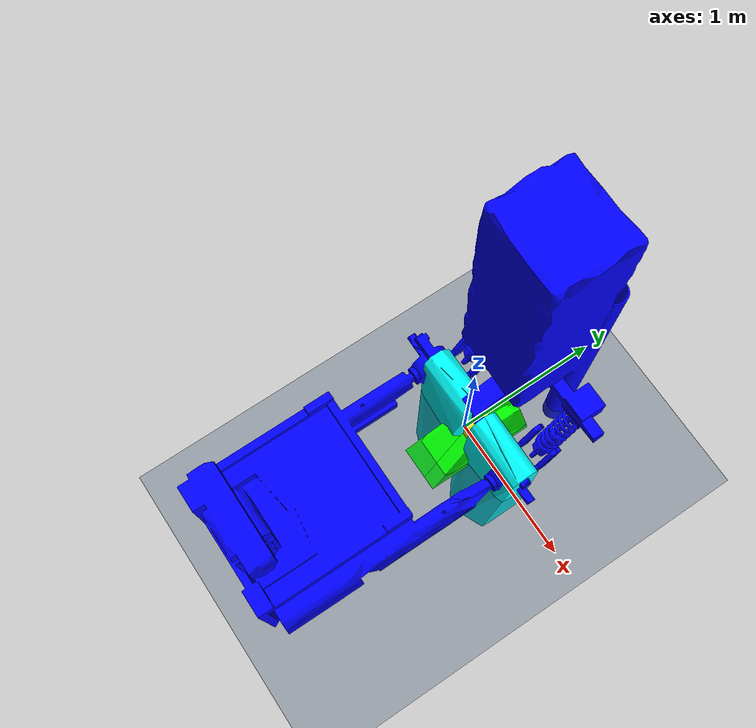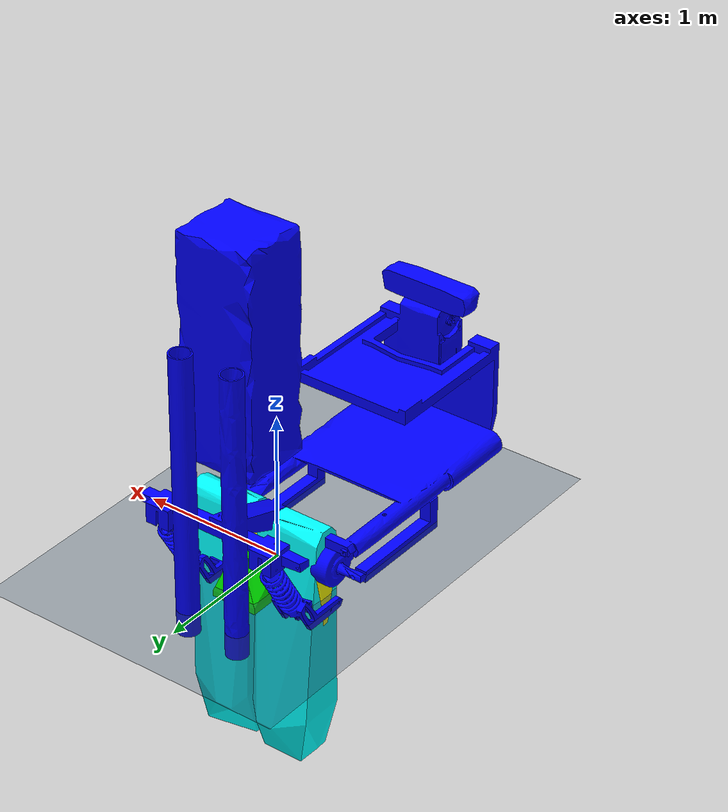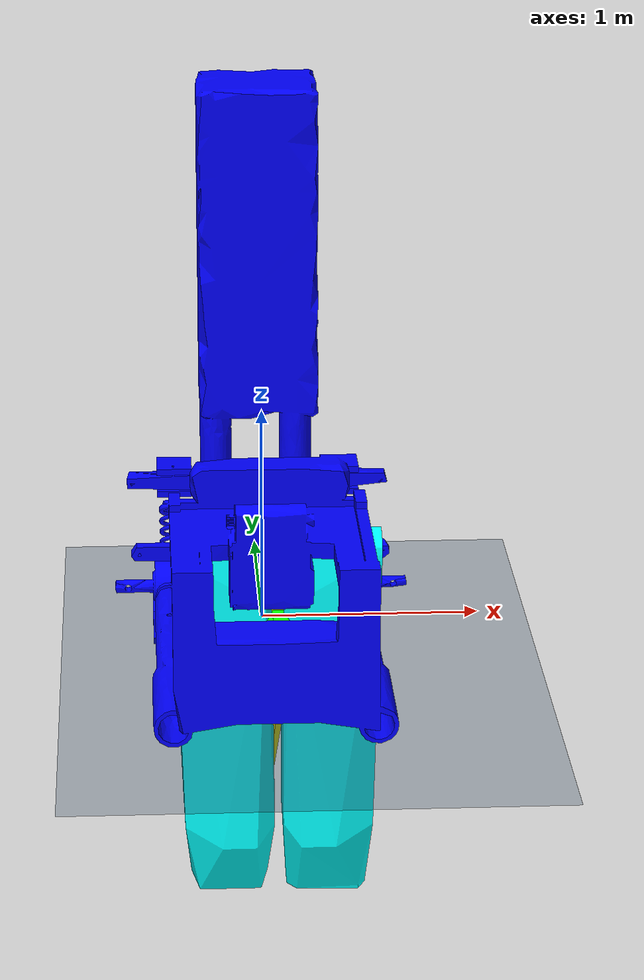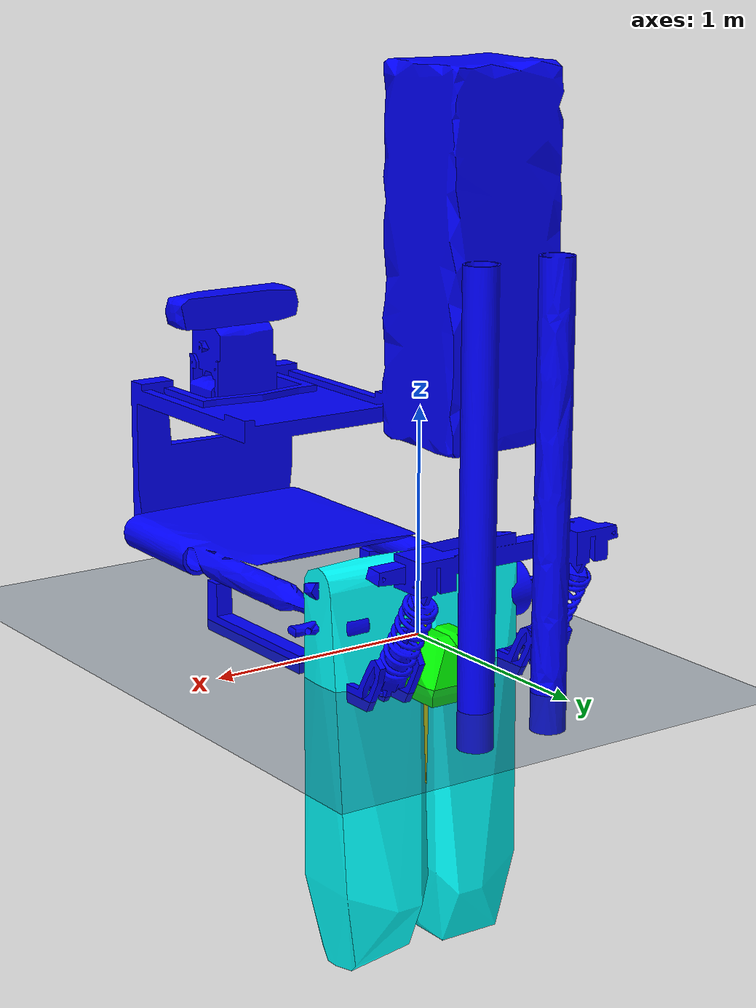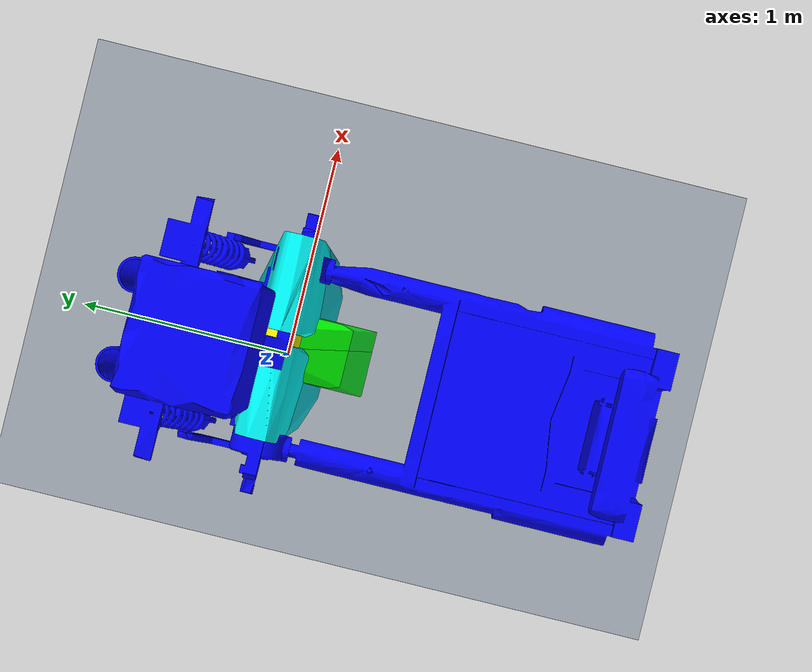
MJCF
<mujoco model="6dof">
    <compiler angle="radian"/>
    <option gravity="0 0 -9.8"/>

    <asset>
        <!-- Texture for the background -->
        <texture type="skybox" builtin="gradient" rgb1="0 0 0" rgb2="0 0 0" width="512" height="512"/>
        <texture name="body" type="cube" builtin="flat" mark="cross" width="127" height="1278"
                 rgb1="0.8 0.6 0.4" rgb2="0.8 0.6 0.4" markrgb="1 1 1" random="0.01"/>
        <material name="body" texture="body" texuniform="true" rgba="0.8 0.6 .4 1"/>
        <texture name="grid" type="2d" builtin="checker" width="512" height="512" rgb1=".1 .2 .3" rgb2=".2 .3 .4"/>
        <material name="grid" texture="grid" texrepeat="1 1" texuniform="true" reflectance=".2" shininess="1.0"/>

         <mesh name="leftthighfixedv1" file="original_stl/leftthighfixedv1.stl" scale="0.001 0.001 0.001"/>
        <mesh name="rightshinv3" file="original_stl/rightshinv3.stl" scale="0.001 0.001 0.001"/>
        <mesh name="footfixedv3" file="original_stl/footfixedv3.stl" scale="0.001 0.001 0.001"/>
        <mesh name="chassisv2" file="original_stl/chassisv2.stl" scale="0.001 0.001 0.001"/>
        <mesh name="rightthighfixedv2" file="original_stl/rightthighfixedv2.stl" scale="0.001 0.001 0.001"/>
        <mesh name="rightshinfixedv2" file="original_stl/rightshinfixedv2.stl" scale="0.001 0.001 0.001"/>
    </asset>

    <visual>
        <map force="0.1" zfar="30"/>
        <rgba haze="0.15 0.25 0.35 1"/>
      <global offwidth="2560" offheight="1440" elevation="-20" azimuth="120"/>
    </visual>

  <worldbody>

      <!-- Define the ground geometry -->
      <body name="ground" pos="0 0 -0.1">
          <geom type="plane" size="10 10 0.1" material="grid"/>
      </body>

    <body name="mark_4">
      <joint name="free_joint" pos="0 0 0" type="free"/>
      <inertial pos="0 0 0" mass="0.1" diaginertia="0.0001 0.0001 0.0001"/>

      <geom pos="0 0.05 0.3095" quat="0.707388 0.706825 0 0" type="mesh" rgba="0 0 1 1" mesh="chassisv2"/>
      <site name="imu_site" pos="0 0.05 0.3095" />
      <body name="intermediate_link" pos="0 0.05 0.3095" quat="0.707388 0.706825 0 0">
        <inertial pos="0 0 0" mass="0.1" diaginertia="0.0001 0.0001 0.0001"/>
        <joint name="right_hip" pos="0 0 0" axis="0 0 1" range="-0.26 0.26" damping="0.05"/>
        <body name="right_thigh" pos="0.041 0 0">
          <inertial pos="-0.020621 -0.116163 0.000182" quat="0.485395 0.498028 -0.502455 0.513711" mass="0.067538" diaginertia="0.000154883 0.000152057 1.26718e-05"/>
          <joint name="right_thigh" pos="0 0 0" axis="1 0 0" range="-1.57 0.78" damping="0.05"/>
          <geom type="mesh" rgba="0 1 1 1" mesh="rightthighfixedv2"/>
          <body name="right_shin" pos="0.0025 -0.16 0">
            <inertial pos="-0.02279 -0.05995 -7e-05" quat="0.502033 0.498188 -0.501758 0.498006" mass="0.014172" diaginertia="0.00272029 0.00246096 0.000285114"/>
            <joint name="right_knee" pos="0 0 0" axis="1 0 0" range="-1.04 1.04" damping="0.05"/>
            <geom type="mesh" rgba="1 1 0 1" mesh="rightshinfixedv2"/>
            <body name="right_ankle" pos="-0.02 -0.13 0">
              <inertial pos="-0.003 -0.011919 -9.8e-05" quat="0.70635 0.0327014 -0.0327014 0.70635" mass="0.022566" diaginertia="9.77159e-06 9.65458e-06 1.39971e-06"/>
              <joint name="right_ankle" pos="0 0 0" axis="1 0 0" range="-0.52 0.52" damping="0.05"/>
              <geom type="mesh" rgba="0 1 0 1" mesh="footfixedv3"/>
            </body>
          </body>
        </body>
      </body>

      <body name="intermediate_link_2" pos="0.1 0.05 0.3095" quat="0.000563312 0.000562864 0.707388 0.706825">
        <inertial pos="0 0 0" mass="0.1" diaginertia="0.0001 0.0001 0.0001"/>
        <joint name="left_hip" pos="0 0 0" axis="0 0 1" range="-0.26 0.26" damping="0.05"/>
        <body name="left_thigh">
          <inertial pos="-0.020539 -0.11748 -0.000178" quat="0.500887 0.512722 -0.486405 0.499639" mass="0.067626" diaginertia="0.000159543 0.000156167 1.33237e-05"/>
          <joint name="left_thigh" pos="0 0 0" axis="1 0 0" range="-0.78 1.57" damping="0.05"/>
          <geom type="mesh" rgba="0 1 1 1" mesh="leftthighfixedv1"/>
          <body name="left_shin" pos="-0.0425 -0.16 0" quat="0.000796327 0 1 0">
            <inertial pos="-0.02279 -0.05995 -7e-05" quat="0.502033 0.498188 -0.501758 0.498006" mass="0.014172" diaginertia="0.00272029 0.00246096 0.000285114"/>
            <joint name="left_knee" pos="0 0 0" axis="1 0 0" range="-1.04 1.04" damping="0.05"/>
            <geom type="mesh" rgba="1 1 0 1" mesh="rightshinv3"/>
            <body name="left_ankle" pos="-0.02 -0.13 0">
              <inertial pos="-0.003 -0.011919 -9.8e-05" quat="0.70635 0.0327014 -0.0327014 0.70635" mass="0.022566" diaginertia="9.77159e-06 9.65458e-06 1.39971e-06"/>
              <joint name="left_ankle" pos="0 0 0" axis="1 0 0" range="-0.52 0.52" damping="0.05"/>
              <geom type="mesh" rgba="0 1 0 1" mesh="footfixedv3"/>
            </body>
          </body>
        </body>
      </body>

    </body>

     <!-- Camera definitions -->
      <camera name="back" pos="-3 0 1" xyaxes="0 -1 0 1 0 2" mode="trackcom"/>
      <camera name="side" pos="0 -3 1" xyaxes="1 0 0 0 1 2" mode="trackcom"/>
      <body name="head" pos="0 0 .19">
        <camera name="egocentric" pos=".09 0 0" xyaxes="0 -1 0 .1 0 1" fovy="80"/>
      </body>

  </worldbody>

  <actuator>
    <position ctrllimited="true" ctrlrange="-10 10" gear="1" joint="left_thigh"/>
  </actuator>
  <actuator>
    <position ctrllimited="true" ctrlrange="-10 10" gear="1" joint="left_knee"/>
  </actuator>
  <actuator>
    <position ctrllimited="true" ctrlrange="-10 10" gear="1" joint="left_ankle"/>
  </actuator>
  <actuator>
    <position ctrllimited="true" ctrlrange="-10 10" gear="1" joint="right_thigh"/>
  </actuator>
  <actuator>
    <position ctrllimited="true" ctrlrange="-10 10" gear="1" joint="right_knee"/>
  </actuator>
  <actuator>
    <position ctrllimited="true" ctrlrange="-10 10" gear="1" joint="right_ankle"/>
  </actuator>
  <actuator>
    <position ctrllimited="true" ctrlrange="-10 10" gear="1" joint="left_hip"/>
  </actuator>
  <actuator>
    <position ctrllimited="true" ctrlrange="-10 10" gear="1" joint="right_hip"/>
  </actuator>

  <sensor>
    <accelerometer name="imu_accel" site="imu_site"/>
    <gyro name="imu_gyro" site="imu_site"/>
  </sensor>

</mujoco>
